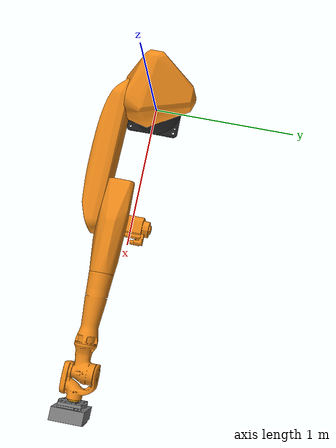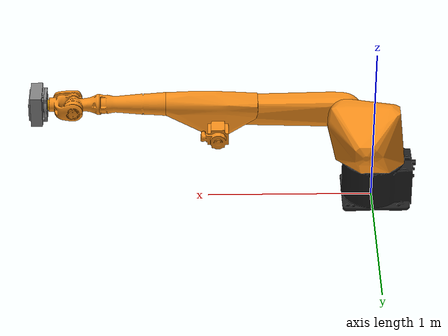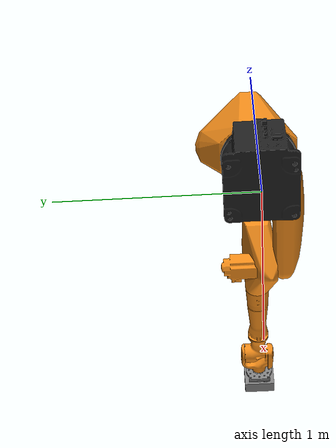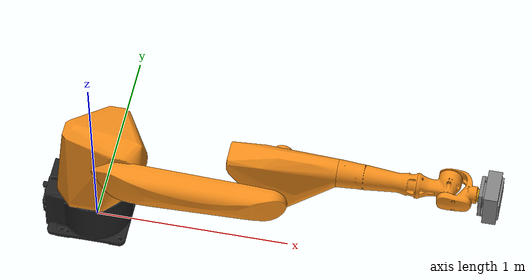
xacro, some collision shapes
<?xml version="1.0" ?>
<robot name="cabka_robot1" xmlns:xacro="http://wiki.ros.org/xacro">
  <xacro:include filename="$(find acroba_resources)/urdf/kr20r1810_macro.xacro"/>
  <xacro:include filename="$(find acroba_resources)/urdf/cabka_tool_macro.xacro"/>
  <xacro:kuka_kr20r1810 prefix=""/>
  <xacro:cabka_tool prefix=""/>

 <link name="world"/>
<joint name="world_joint" type="fixed">
	<parent link="world"/>
	<child link="base_link"/>
	<origin xyz="0.000000 0.000000 0.0" rpy="0.000000 0.000000 0.000000"/>
</joint>

<joint name="tool_joint" type="fixed">
	<parent link="tool0"/>
	<child link="base_tool"/>
	<origin xyz="0.000000 0.000000 0.0" rpy="0.000000 0.000000 0"/>
</joint>

</robot>

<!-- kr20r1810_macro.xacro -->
<robot xmlns:xacro="http://wiki.ros.org/xacro">
  <xacro:include filename="$(find acroba_resources)/urdf/common_constants.xacro"/>
  <xacro:include filename="$(find acroba_resources)/urdf/kuka_common_materials.xacro"/>
  <xacro:include filename="$(find acroba_resources)/urdf/kr20r1810_transmission.xacro"/>

  <xacro:property name="max_effort" value="0"/>
  	<xacro:macro name="kuka_kr20r1810" params="prefix">

  <xacro:macro name="default_inertia" params="mass">
    <inertial>
      <mass value="${mass}"/>
      <inertia ixx="${1.0/12}" ixy="0.0" ixz="0.0"
        iyy="${1.0/12}" iyz="0.0"
        izz="${1.0/12}"/>
    </inertial>
  </xacro:macro>

	<link name="${prefix}base_link">
    <visual>
      <origin xyz="0 0 0.0" rpy="0 0 0"/>
      <geometry>
          <mesh filename="package://acroba_resources/meshes/kuka_kr20/base.stl" scale="0.001 0.001 0.001"/>
      </geometry>
      <xacro:material_kuka_black />
    </visual>
    <collision>
      <origin xyz="0 0 0.0" rpy="0 0 0"/>
      <geometry>
         <mesh filename="package://acroba_resources/meshes/kuka_kr20/base_convex.stl" scale="0.001 0.001 0.001"/>
      </geometry>
    </collision>
    <xacro:default_inertia mass="1"/>
  </link>

<!--z coord from cad-->
  <link name="${prefix}link_1">
    <visual>
      <origin xyz="0 0 -0.250" rpy="0 0 0"/>
      <geometry>
          <mesh filename="package://acroba_resources/meshes/kuka_kr20/link1.stl" scale="0.001 0.001 0.001"/>
      </geometry>
      <xacro:material_kuka_orange />
    </visual>
    <collision>
      <origin xyz="0 0 -0.250" rpy="0 0 0"/>
      <geometry>
         <mesh filename="package://acroba_resources/meshes/kuka_kr20/link1_convex.stl" scale="0.001 0.001 0.001"/>
      </geometry>
    </collision>
    <xacro:default_inertia mass="1"/>
  </link>

<!--y coord from cad-->
  <link name="${prefix}link_2">
    <visual>
      <origin xyz="-0.16 0.0889 -0.52" rpy="0 0 0"/>
      <geometry>
          <mesh filename="package://acroba_resources/meshes/kuka_kr20/link2.stl" scale="0.001 0.001 0.001"/>
      </geometry>
      <xacro:material_kuka_orange />
    </visual>
    <collision>
      <origin xyz="-0.16 0.0889 -0.52" rpy="0 0 0"/>
      <geometry>
         <mesh filename="package://acroba_resources/meshes/kuka_kr20/link2_convex.stl" scale="0.001 0.001 0.001"/>
      </geometry>
    </collision>
    <xacro:default_inertia mass="1"/>
  </link>

<!-- y coord from cad-->
  <link name="${prefix}link_3">
    <visual>
      <origin xyz="-0.16 0.0978 -1.30" rpy="0 0 0"/>
      <geometry>
          <mesh filename="package://acroba_resources/meshes/kuka_kr20/link3.stl" scale="0.001 0.001 0.001"/>
      </geometry>
      <xacro:material_kuka_orange />
    </visual>
    <collision>
      <origin xyz="-0.16 0.0978 -1.30" rpy="0 0 0"/>
      <geometry>
         <mesh filename="package://acroba_resources/meshes/kuka_kr20/link3_convex.stl" scale="0.001 0.001 0.001"/>
      </geometry>
    </collision>
    <xacro:default_inertia mass="1"/>
  </link>

 <!-- y coord from cad-->
  <link name="${prefix}link_3_1">
    <visual>
      <origin xyz="-0.16 0.006 -1.30" rpy="0 0 0"/>
      <geometry>
          <mesh filename="package://acroba_resources/meshes/kuka_kr20/link3_1.stl" scale="0.001 0.001 0.001"/>
      </geometry>
      <xacro:material_kuka_orange />
    </visual>
    <collision>
      <origin xyz="-0.16 0.006 -1.30" rpy="0 0 0"/>
      <geometry>
         <mesh filename="package://acroba_resources/meshes/kuka_kr20/link3_1_convex.stl" scale="0.001 0.001 0.001"/>
      </geometry>
    </collision>
    <xacro:default_inertia mass="1"/>
  </link>

  <link name="${prefix}link_4">
    <visual>
      <origin xyz="-0.46 0 -1.45" rpy="0 0 0"/>
      <geometry>
          <mesh filename="package://acroba_resources/meshes/kuka_kr20/link4.stl" scale="0.001 0.001 0.001"/>
      </geometry>
      <xacro:material_kuka_orange />
    </visual>
    <collision>
      <origin xyz="-0.46 0 -1.45" rpy="0 0 0"/>
      <geometry>
         <mesh filename="package://acroba_resources/meshes/kuka_kr20/link4_convex.stl" scale="0.001 0.001 0.001"/>
      </geometry>
    </collision>
    <xacro:default_inertia mass="1"/>
  </link>

  <link name="${prefix}link_5">
    <visual>
      <origin xyz="-0.87 0 -1.45" rpy="0 0 0"/>
      <geometry>
          <mesh filename="package://acroba_resources/meshes/kuka_kr20/link5.stl" scale="0.001 0.001 0.001"/>
      </geometry>
      <xacro:material_kuka_orange />
    </visual>
    <collision>
      <origin xyz="-0.87 0 -1.45" rpy="0 0 0"/>
      <geometry>
         <mesh filename="package://acroba_resources/meshes/kuka_kr20/link5_convex.stl" scale="0.001 0.001 0.001"/>
      </geometry>
    </collision>
    <xacro:default_inertia mass="1"/>
  </link>

  <link name="${prefix}link_6">
    <visual>
      <origin xyz="-1.02 0 -1.45" rpy="0 0 0"/>
      <geometry>
          <mesh filename="package://acroba_resources/meshes/kuka_kr20/link6.stl" scale="0.001 0.001 0.001"/>
      </geometry>
      <xacro:material_kuka_orange />
    </visual>
    <collision>
      <origin xyz="-1.02 0 -1.45" rpy="0 0 0"/>
      <geometry>
         <mesh filename="package://acroba_resources/meshes/kuka_kr20/link6_convex.stl" scale="0.001 0.001 0.001"/>
      </geometry>
    </collision>
    <xacro:default_inertia mass="1"/>
  </link>

  <link name="${prefix}link_7">
    <visual>
      <origin xyz="-1.173 0 -1.45" rpy="0 0 0"/>
      <geometry>
          <mesh filename="package://acroba_resources/meshes/kuka_kr20/link_ee.stl" scale="0.001 0.001 0.001"/>
      </geometry>
      <xacro:material_kuka_orange />
    </visual>
    <collision>
      <origin xyz="-1.173 0 -1.45" rpy="0 0 0"/>
      <geometry>
         <mesh filename="package://acroba_resources/meshes/kuka_kr20/link_ee_convex.stl" scale="0.001 0.001 0.001"/>
      </geometry>
    </collision>
    <xacro:default_inertia mass="1"/>
  </link>

<!--JOINTS-->
<!-- the joint coordinate are the substaction between their coordinates (child-parent)*-1-->
		<joint name="${prefix}joint_a1" type="revolute">
		    <origin xyz="0 0 0.250" rpy="0 0 0"/>
		    <parent link="${prefix}base_link"/>
		    <child link="${prefix}link_1"/>
		    <axis xyz="0 0 -1"/>
        <dynamics damping="0.7"/>
		    <limit effort="${max_effort}" lower="${-DEG2RAD * 185}" upper="${DEG2RAD * 185}" velocity="${DEG2RAD * 200}"/>
		</joint>

    <joint name="${prefix}joint_a2" type="revolute">
      <origin xyz="0.16 -0.0889 0.27" rpy="0 1.57 0 "/>
      <parent link="${prefix}link_1"/>
      <child link="${prefix}link_2"/>
      <axis xyz="0 1 0"/>
      <dynamics damping="0.7"/>
      <limit effort="${max_effort}" lower="${-DEG2RAD * 185}" upper="${DEG2RAD * 65}" velocity="${DEG2RAD * 175}"/>
    </joint>

    <joint name="${prefix}joint_a3" type="revolute">
      <origin xyz="0 -0.009 0.78" rpy="0 -1.57 0"/>
      <parent link="${prefix}link_2"/>
      <child link="${prefix}link_3"/>
      <axis xyz="0 1 0"/>
      <dynamics damping="0.7"/>
      <limit effort="${max_effort}" lower="${-DEG2RAD * 138}" upper="${DEG2RAD * 175}" velocity="${DEG2RAD * 190}"/>
    </joint>

    <joint name="${prefix}joint_fixed_1" type="fixed">
      <origin xyz="0.0 0.091 0" rpy="0 0 0"/>
      <parent link="${prefix}link_3"/>
      <child link="${prefix}link_3_1"/>
    </joint>

    <joint name="${prefix}joint_a4" type="revolute">
      <origin xyz="0.3 0.0978 0.15" rpy="0 0 0"/>
      <parent link="${prefix}link_3"/>
      <child link="${prefix}link_4"/>
      <axis xyz="-1 0 0"/>
      <dynamics damping="0.7"/>
      <limit effort="${max_effort}" lower="${-DEG2RAD * 350}" upper="${DEG2RAD * 350}" velocity="${DEG2RAD * 430}"/>
    </joint>

    <joint name="${prefix}joint_fixed_2" type="fixed">
      <origin xyz="0.41 0 0" rpy="0 0 0"/>
      <parent link="${prefix}link_4"/>
      <child link="${prefix}link_5"/>
    </joint>

    <joint name="${prefix}joint_a5" type="revolute">
      <origin xyz="0.15 0 0" rpy="0 0 0"/>
      <parent link="${prefix}link_5"/>
      <child link="${prefix}link_6"/>
      <axis xyz="0 1 0"/>
      <dynamics damping="0.7"/>
      <limit effort="${max_effort}" lower="${-DEG2RAD * 120}" upper="${DEG2RAD * 120}" velocity="${DEG2RAD * 430}"/>
    </joint>

    <joint name="${prefix}joint_a6" type="revolute">
      <origin xyz="0.153 0 0" rpy="0 0 0"/>
      <parent link="${prefix}link_6"/>
      <child link="${prefix}link_7"/>
      <axis xyz="-1 0 0"/>
      <dynamics damping="0.7"/>
      <limit effort="${max_effort}" lower="${-DEG2RAD * 350}" upper="${DEG2RAD * 350}" velocity="${DEG2RAD * 630}"/>
    </joint>

     <!-- ROS base_link to UR 'Base' Coordinates transform -->
    <link name="${prefix}base"/>
    <joint name="${prefix}base_link-base_fixed_joint" type="fixed">
      <origin xyz="0 0 0" rpy="0 0 0"/>
      <parent link="${prefix}base_link"/>
      <child link="${prefix}base"/>
    </joint>

     <!-- ROS-Industrial 'flange' frame: attachment point for EEF models -->
    <link name="${prefix}flange" />
    <joint name="${prefix}joint_6-flange" type="fixed">
      <origin xyz="0 0 0" rpy="0 0 0" />
      <parent link="${prefix}link_7" />
      <child link="${prefix}flange" />
    </joint>

    <!-- ROS-Industrial 'tool0' frame: all-zeros tool frame -->
    <link name="${prefix}tool0" />
    <joint name="${prefix}link_6-tool0" type="fixed">
      <origin xyz="0 0 0.001" rpy="0 ${-pi/2} ${pi}" />
      <parent link="${prefix}link_7" />
      <child link="${prefix}tool0" />
    </joint>

    <!--Gazebo robot control-->

    <gazebo reference="${prefix}base_link">
      <mu1>0.2</mu1>
      <mu2>0.2</mu2>
      <material>Gazebo/Black</material>
    </gazebo>
    <!-- Link1 -->
    <gazebo reference="${prefix}link_1">
      <material>Gazebo/Orange</material>
    </gazebo>

    <gazebo reference="${prefix}link_2">
      <material>Gazebo/Orange</material>
    </gazebo>

    <!-- Link2 -->
    <gazebo reference="${prefix}link_3">
      <mu1>0.2</mu1>
      <mu2>0.2</mu2>
      <material>Gazebo/Orange</material>
    </gazebo>

    <!-- Link3 -->
    <gazebo reference="${prefix}link_3_1">
      <mu1>0.2</mu1>
      <mu2>0.2</mu2>
      <material>Gazebo/Orange</material>
    </gazebo>

    <gazebo reference="${prefix}link_4">
      <mu1>0.2</mu1>
      <mu2>0.2</mu2>
      <material>Gazebo/Orange</material>
    </gazebo>

    <gazebo reference="${prefix}link_5">
      <mu1>0.2</mu1>
      <mu2>0.2</mu2>
      <material>Gazebo/Orange</material>
    </gazebo>

     <gazebo reference="${prefix}link_6">
      <mu1>0.2</mu1>
      <mu2>0.2</mu2>
      <material>Gazebo/Orange</material>
    </gazebo>

    <xacro:kr20r1810_transmission prefix="${prefix}"/>

	</xacro:macro>
</robot>

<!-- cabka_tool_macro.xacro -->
<robot xmlns:xacro="http://wiki.ros.org/xacro">

   <xacro:macro name="cabka_tool" params="prefix">

    <link name="${prefix}tool_base_body" >
      <visual>
        <origin xyz="0.0 0.0 0.0" rpy="0 0 0" />
        <geometry>
            <mesh filename="package://acroba_resources/meshes/miscellaneous/cabka_tool/cabka_tool_base.stl" scale="0.001 0.001 0.001"/>
        </geometry>
        <material name="Grey">
          <color rgba="0.5 0.5 0.5 1.0"/>
        </material>
      </visual>
      <collision>
        <origin xyz="0.0 0.077 0.0" rpy="0 0 0" />
        <geometry>
            <box size="0.160 0.02 0.159"/>
        </geometry>
      </collision>

     <!-- unknown intertia-->

    </link>

    <link name="${prefix}tool_body" >
      <visual>
        <origin xyz="0.0 0.0 0.0" rpy="0 0 0" />
        <geometry>
            <mesh filename="package://acroba_resources/meshes/miscellaneous/cabka_tool/cabka_slider_1.stl" scale="0.001 0.001 0.001"/>
        </geometry>
        <material name="Grey">
          <color rgba="0.5 0.5 0.5 1.0"/>
        </material>
      </visual>
      <collision>
        <origin xyz="0.0 0.05 0.0" rpy="0 0 0" />
        <geometry>
            <box size="0.166 0.032 0.13"/>
        </geometry>
      </collision>

     <!-- unknown intertia-->

    </link>

    <link name="${prefix}slider_1" >
      <visual>
        <origin xyz="0.0 0.0 0.0" rpy="0 0 0" />
        <geometry>
            <mesh filename="package://acroba_resources/meshes/miscellaneous/cabka_tool/cabka_slider_2.stl" scale="0.001 0.001 0.001"/>
        </geometry>
        <material name="Grey">
          <color rgba="0.5 0.5 0.5 1.0"/>
        </material>
      </visual>
      <collision>
        <origin xyz="0.0 0.022 0.0" rpy="0 0 0" />
        <geometry>
            <box size="0.192 0.069 0.181"/>
        </geometry>
      </collision>

     <!-- unknown intertia-->

    </link>

    <link name="${prefix}slider_2" >
      <visual>
        <origin xyz="0.0 0.0 0.0" rpy="0 0 0" />
        <geometry>
            <mesh filename="package://acroba_resources/meshes/miscellaneous/cabka_tool/cabka_tool_body.stl" scale="0.001 0.001 0.001"/>
        </geometry>
        <material name="Grey">
          <color rgba="0.5 0.5 0.5 1.0"/>
        </material>
      </visual>
      <collision>
        <origin xyz="0 -0.005 0" rpy="0 0 0" />
        <geometry>
            <box size="0.109 0.035 0.178"/>
        </geometry>
      </collision>
      <collision>
        <origin xyz="0 -0.08 0" rpy="0 0 0" />
        <geometry>
            <box size="0.094 0.114 0.11"/>
        </geometry>
      </collision>
      <collision>
        <origin xyz="0 -0.164 0" rpy="1.5707 0 0" />
        <geometry>
            <cylinder radius="0.02" length="0.077"/>
        </geometry>
      </collision>
      <collision>
        <origin xyz="0 -0.235 0" rpy="1.5707 0 0" />
        <geometry>
            <cylinder radius="0.01" length="0.091"/>
        </geometry>
      </collision>
     <!-- unknown intertia-->

    </link>

    <joint name="${prefix}joint_base_body" type="fixed">
      <parent link="${prefix}tool_base_body" />
      <child link = "${prefix}tool_body" />
      <origin xyz="0.0 0.0 0.0 " rpy="0.0 0.0 0.0" />
    </joint>

    <joint name="${prefix}joint_slider_x" type="prismatic">
      <parent link="${prefix}tool_body" />
      <child link = "${prefix}slider_1" />
      <origin xyz="0.0 0.0 0.0 " rpy="0.0 0.0 0.0" />
      <axis xyz="1 0 0"/>
      <limit effort="50" lower="-0.048" upper="0.048" velocity="10"/>
    </joint>

    <joint name="${prefix}joint_slider_
    z" type="prismatic">
      <parent link="${prefix}slider_1" />
      <child link = "${prefix}slider_2" />
      <origin xyz="0.0 0.0 0.0 " rpy="0.0 0.0 0.0" />
      <axis xyz="0 0 1"/>
      <limit effort="50" lower="-0.048" upper="0.048" velocity="10"/>
    </joint>

    <link name="${prefix}base_tool"/>
    <joint name="${prefix}joint_base_tool" type="fixed">
      <parent link="${prefix}base_tool" />
      <child link = "${prefix}tool_base_body" />
      <origin xyz="0.0 0.0 0.087 " rpy="-1.570796 0.0 0.0" />
    </joint>

    <link name="${prefix}end_tool"/>
   <joint name="${prefix}joint_end_tool" type="fixed">
      <parent link="${prefix}slider_2" />
      <child link = "${prefix}end_tool" />
      <origin xyz="0.0 -0.280 0.0" rpy="1.570796 0.0 0.0" />
    </joint>

    <disable_collision link1="${prefix}tool_base_body" link2="${prefix}tool_body"/>
    <disable_collision link1="${prefix}slider_1" link2="${prefix}slider_2"/>
    <disable_collision link1="${prefix}slider_1" link2="${prefix}tool_body"/>
   </xacro:macro>
</robot>
